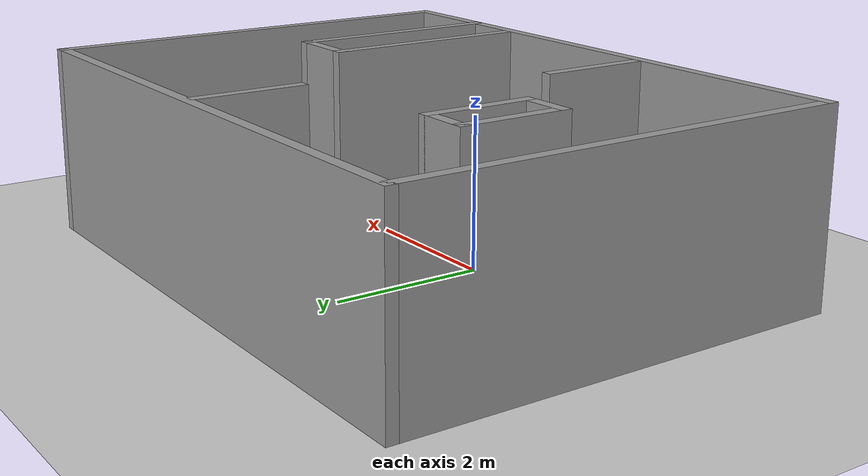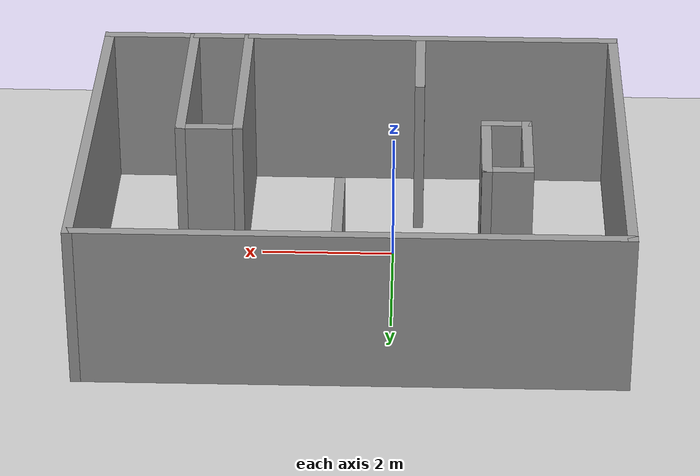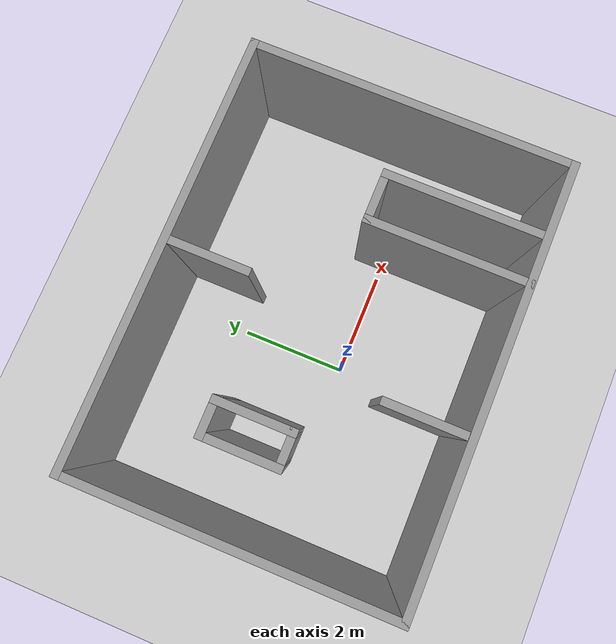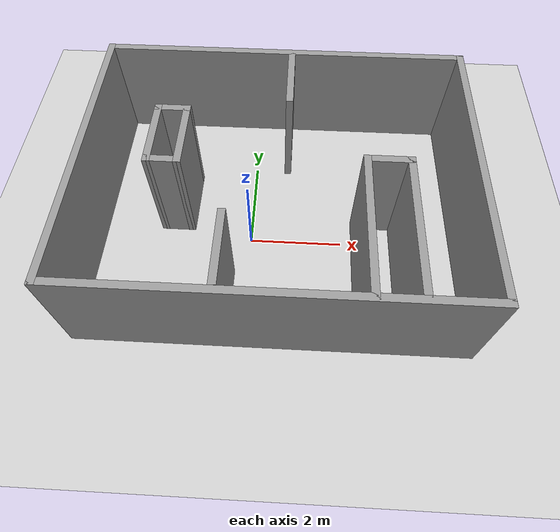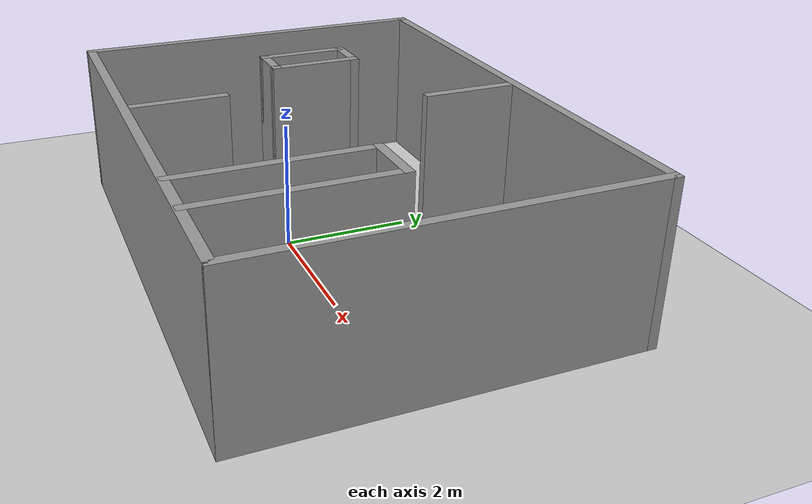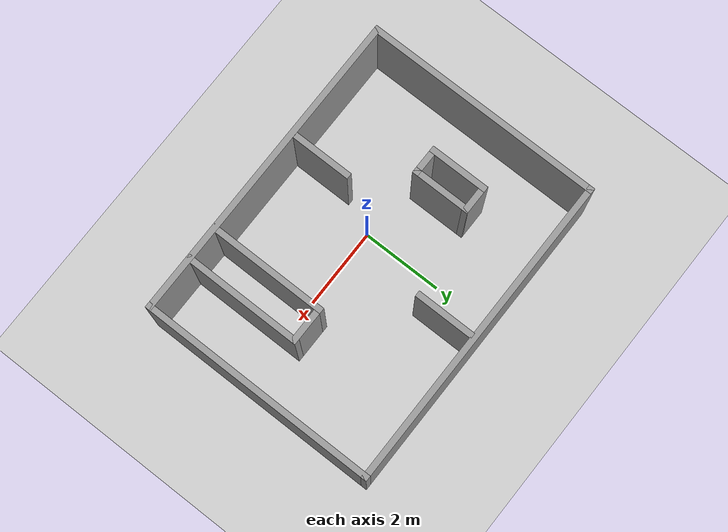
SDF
<sdf version="1.7">
 <world name="default">
  <light name="sun" type="directional">
   <pose>0 0 10 0 -0 0</pose>
   <diffuse>0.8 0.8 0.8 1</diffuse>
   <specular>0.2 0.2 0.2 1</specular>
   <attenuation>
    <range>1000</range>
    <constant>0.9</constant>
    <linear>0.01</linear>
    <quadratic>0.001</quadratic>
   </attenuation>
   <direction>-0.5 0.1 -0.9</direction>
   <spot><inner_angle>0</inner_angle><outer_angle>0</outer_angle><falloff>0</falloff></spot>
  </light>
  <model name="ground_plane">
   <static>1</static>
   <link name="link">
    <collision name="collision">
     <geometry><plane><normal>0 0 1</normal><size>100 100</size></plane></geometry>
     <surface>
      <contact><collide_bitmask>65535</collide_bitmask></contact>
      <friction><ode><mu>100</mu><mu2>50</mu2></ode></friction>
     </surface>
    </collision>
    <visual name="visual">
     <cast_shadows>0</cast_shadows>
     <geometry><plane><normal>0 0 1</normal><size>100 100</size></plane></geometry>
     <material>
      <script><uri>file://media/materials/scripts/gazebo.material</uri><name>Gazebo/Grey</name></script>
     </material>
    </visual>
   </link>
  </model>
  <gravity>0 0 -9.8</gravity>
  <magnetic_field>6e-06 2.3e-05 -4.2e-05</magnetic_field>
  <atmosphere type="adiabatic"/>
  <physics type="ode">
   <max_step_size>0.001</max_step_size>
   <real_time_factor>1</real_time_factor>
   <real_time_update_rate>1000</real_time_update_rate>
  </physics>
  <scene><ambient>0.4 0.4 0.4 1</ambient><background>0.7 0.7 0.7 1</background><shadows>1</shadows></scene>
  <spherical_coordinates>
   <surface_model>EARTH_WGS84</surface_model>
   <latitude_deg>0</latitude_deg>
   <longitude_deg>0</longitude_deg>
   <elevation>0</elevation>
   <heading_deg>0</heading_deg>
  </spherical_coordinates>
  <model name="Untitled6">
   <pose>0.565 0.565 0 0 -0 0</pose>
   <link name="Wall_1">
    <collision name="Wall_1_Collision">
     <geometry><box><size>8 0.15 2.5</size></box></geometry>
     <pose>0 0 1.25 0 -0 0</pose>
    </collision>
    <visual name="Wall_1_Visual">
     <pose>0 0 1.25 0 -0 0</pose>
     <geometry><box><size>8 0.15 2.5</size></box></geometry>
     <material>
      <script><uri>file://media/materials/scripts/gazebo.material</uri><name>Gazebo/Grey</name></script>
      <ambient>1 1 1 1</ambient>
     </material>
     <meta><layer>0</layer></meta>
    </visual>
    <pose>0 -2.925 0 0 -0 0</pose>
   </link>
   <link name="Wall_17">
    <collision name="Wall_17_Collision">
     <geometry><box><size>3 0.15 2.5</size></box></geometry>
     <pose>0 0 1.25 0 -0 0</pose>
    </collision>
    <visual name="Wall_17_Visual">
     <pose>0 0 1.25 0 -0 0</pose>
     <geometry><box><size>3 0.15 2.5</size></box></geometry>
     <material>
      <script><uri>file://media/materials/scripts/gazebo.material</uri><name>Gazebo/Grey</name></script>
      <ambient>1 1 1 1</ambient>
     </material>
     <meta><layer>0</layer></meta>
    </visual>
    <pose>1.74006 -1.47659 0 0 -0 1.5708</pose>
   </link>
   <link name="Wall_18">
    <collision name="Wall_18_Collision">
     <geometry><box><size>1 0.15 2.5</size></box></geometry>
     <pose>0 0 1.25 0 -0 0</pose>
    </collision>
    <visual name="Wall_18_Visual">
     <pose>0 0 1.25 0 -0 0</pose>
     <geometry><box><size>1 0.15 2.5</size></box></geometry>
     <material>
      <script><uri>file://media/materials/scripts/gazebo.material</uri><name>Gazebo/Grey</name></script>
      <ambient>1 1 1 1</ambient>
     </material>
     <meta><layer>0</layer></meta>
    </visual>
    <pose>2.16506 -0.051591 0 0 -0 0</pose>
   </link>
   <link name="Wall_19">
    <collision name="Wall_19_Collision">
     <geometry><box><size>3 0.15 2.5</size></box></geometry>
     <pose>0 0 1.25 0 -0 0</pose>
    </collision>
    <visual name="Wall_19_Visual">
     <pose>0 0 1.25 0 -0 0</pose>
     <geometry><box><size>3 0.15 2.5</size></box></geometry>
     <material>
      <script><uri>file://media/materials/scripts/gazebo.material</uri><name>Gazebo/Grey</name></script>
      <ambient>1 1 1 1</ambient>
     </material>
     <meta><layer>0</layer></meta>
    </visual>
    <pose>2.59006 -1.47659 0 0 -0 -1.5708</pose>
   </link>
   <link name="Wall_22">
    <collision name="Wall_22_Collision">
     <geometry><box><size>1.5 0.15 2.5</size></box></geometry>
     <pose>0 0 1.25 0 -0 0</pose>
    </collision>
    <visual name="Wall_22_Visual">
     <pose>0 0 1.25 0 -0 0</pose>
     <geometry><box><size>1.5 0.15 2.5</size></box></geometry>
     <material>
      <script><uri>file://media/materials/scripts/gazebo.material</uri><name>Gazebo/Grey</name></script>
      <ambient>1 1 1 1</ambient>
     </material>
     <meta><layer>0</layer></meta>
    </visual>
    <pose>-2.52994 0.413409 0 0 -0 -1.5708</pose>
   </link>
   <link name="Wall_23">
    <collision name="Wall_23_Collision">
     <geometry><box><size>0.75 0.15 2.5</size></box></geometry>
     <pose>0 0 1.25 0 -0 0</pose>
    </collision>
    <visual name="Wall_23_Visual">
     <pose>0 0 1.25 0 -0 0</pose>
     <geometry><box><size>0.75 0.15 2.5</size></box></geometry>
     <material>
      <script><uri>file://media/materials/scripts/gazebo.material</uri><name>Gazebo/Grey</name></script>
      <ambient>1 1 1 1</ambient>
     </material>
     <meta><layer>0</layer></meta>
    </visual>
    <pose>-2.22994 -0.261591 0 0 -0 0</pose>
   </link>
   <link name="Wall_24">
    <collision name="Wall_24_Collision">
     <geometry><box><size>1.5 0.15 2.5</size></box></geometry>
     <pose>0 0 1.25 0 -0 0</pose>
    </collision>
    <visual name="Wall_24_Visual">
     <pose>0 0 1.25 0 -0 0</pose>
     <geometry><box><size>1.5 0.15 2.5</size></box></geometry>
     <material>
      <script><uri>file://media/materials/scripts/gazebo.material</uri><name>Gazebo/Grey</name></script>
      <ambient>1 1 1 1</ambient>
     </material>
     <meta><layer>0</layer></meta>
    </visual>
    <pose>-1.92994 0.413409 0 0 -0 1.5708</pose>
   </link>
   <link name="Wall_25">
    <collision name="Wall_25_Collision">
     <geometry><box><size>0.75 0.15 2.5</size></box></geometry>
     <pose>0 0 1.25 0 -0 0</pose>
    </collision>
    <visual name="Wall_25_Visual">
     <pose>0 0 1.25 0 -0 0</pose>
     <geometry><box><size>0.75 0.15 2.5</size></box></geometry>
     <material>
      <script><uri>file://media/materials/scripts/gazebo.material</uri><name>Gazebo/Grey</name></script>
      <ambient>1 1 1 1</ambient>
     </material>
     <meta><layer>0</layer></meta>
    </visual>
    <pose>-2.22994 1.08841 0 0 -0 3.14159</pose>
   </link>
   <link name="Wall_28">
    <collision name="Wall_28_Collision">
     <geometry><box><size>1.5 0.15 2.5</size></box></geometry>
     <pose>0 0 1.25 0 -0 0</pose>
    </collision>
    <visual name="Wall_28_Visual">
     <pose>0 0 1.25 0 -0 0</pose>
     <geometry><box><size>1.5 0.15 2.5</size></box></geometry>
     <material>
      <script><uri>file://media/materials/scripts/gazebo.material</uri><name>Gazebo/Grey</name></script>
      <ambient>1 1 1 1</ambient>
     </material>
     <meta><layer>0</layer></meta>
    </visual>
    <pose>0.18006 2.13341 0 0 -0 -1.5708</pose>
   </link>
   <link name="Wall_30">
    <collision name="Wall_30_Collision">
     <geometry><box><size>1.5 0.15 2.5</size></box></geometry>
     <pose>0 0 1.25 0 -0 0</pose>
    </collision>
    <visual name="Wall_30_Visual">
     <pose>0 0 1.25 0 -0 0</pose>
     <geometry><box><size>1.5 0.15 2.5</size></box></geometry>
     <material>
      <script><uri>file://media/materials/scripts/gazebo.material</uri><name>Gazebo/Grey</name></script>
      <ambient>1 1 1 1</ambient>
     </material>
     <meta><layer>0</layer></meta>
    </visual>
    <pose>-0.93994 -2.09659 0 0 -0 1.5708</pose>
   </link>
   <link name="Wall_6">
    <collision name="Wall_6_Collision">
     <geometry><box><size>6 0.15 2.5</size></box></geometry>
     <pose>0 0 1.25 0 -0 0</pose>
    </collision>
    <visual name="Wall_6_Visual">
     <pose>0 0 1.25 0 -0 0</pose>
     <geometry><box><size>6 0.15 2.5</size></box></geometry>
     <material>
      <script><uri>file://media/materials/scripts/gazebo.material</uri><name>Gazebo/Grey</name></script>
      <ambient>1 1 1 1</ambient>
     </material>
     <meta><layer>0</layer></meta>
    </visual>
    <pose>3.925 -0 0 0 -0 1.5708</pose>
   </link>
   <link name="Wall_7">
    <collision name="Wall_7_Collision">
     <geometry><box><size>8 0.15 2.5</size></box></geometry>
     <pose>0 0 1.25 0 -0 0</pose>
    </collision>
    <visual name="Wall_7_Visual">
     <pose>0 0 1.25 0 -0 0</pose>
     <geometry><box><size>8 0.15 2.5</size></box></geometry>
     <material>
      <script><uri>file://media/materials/scripts/gazebo.material</uri><name>Gazebo/Grey</name></script>
      <ambient>1 1 1 1</ambient>
     </material>
     <meta><layer>0</layer></meta>
    </visual>
    <pose>0 2.925 0 0 -0 3.14159</pose>
   </link>
   <link name="Wall_8">
    <collision name="Wall_8_Collision">
     <geometry><box><size>6 0.15 2.5</size></box></geometry>
     <pose>0 0 1.25 0 -0 0</pose>
    </collision>
    <visual name="Wall_8_Visual">
     <pose>0 0 1.25 0 -0 0</pose>
     <geometry><box><size>6 0.15 2.5</size></box></geometry>
     <material>
      <script><uri>file://media/materials/scripts/gazebo.material</uri><name>Gazebo/Grey</name></script>
      <ambient>1 1 1 1</ambient>
     </material>
     <meta><layer>0</layer></meta>
    </visual>
    <pose>-3.925 -0 0 0 -0 -1.5708</pose>
   </link>
   <static>1</static>
  </model>
 </world>
</sdf>
